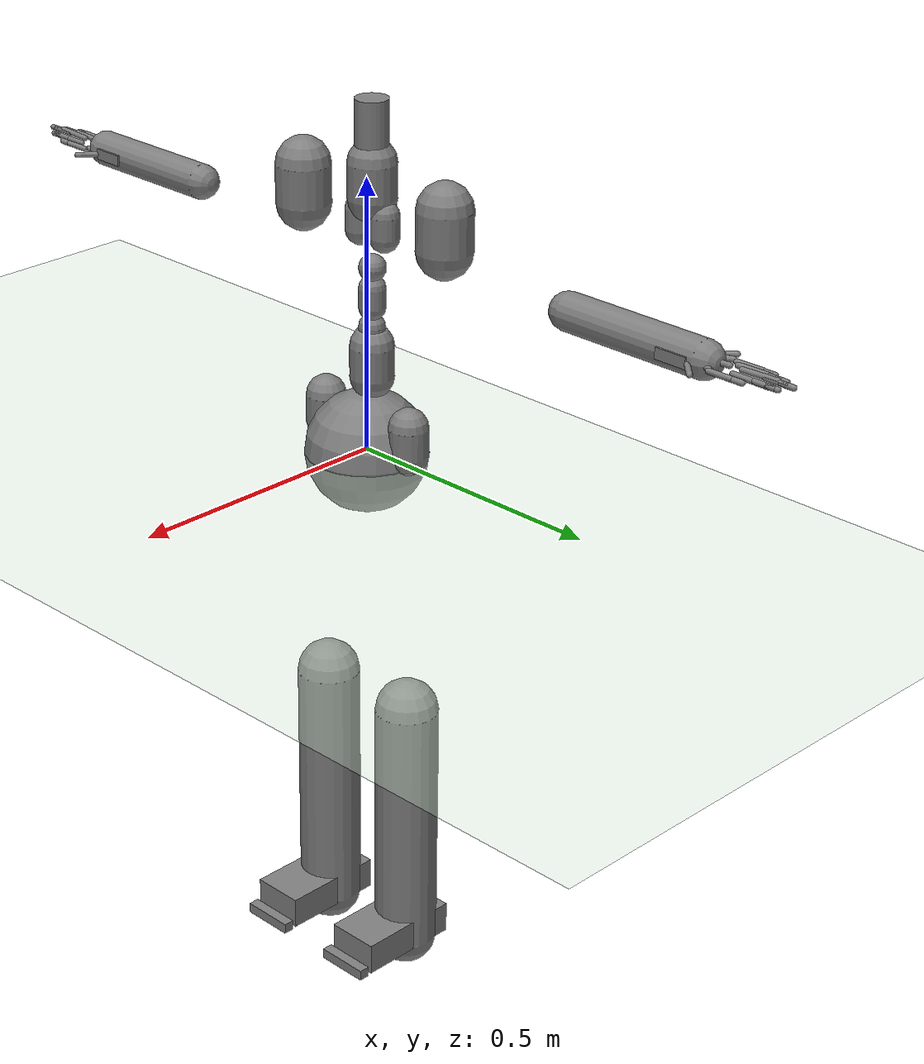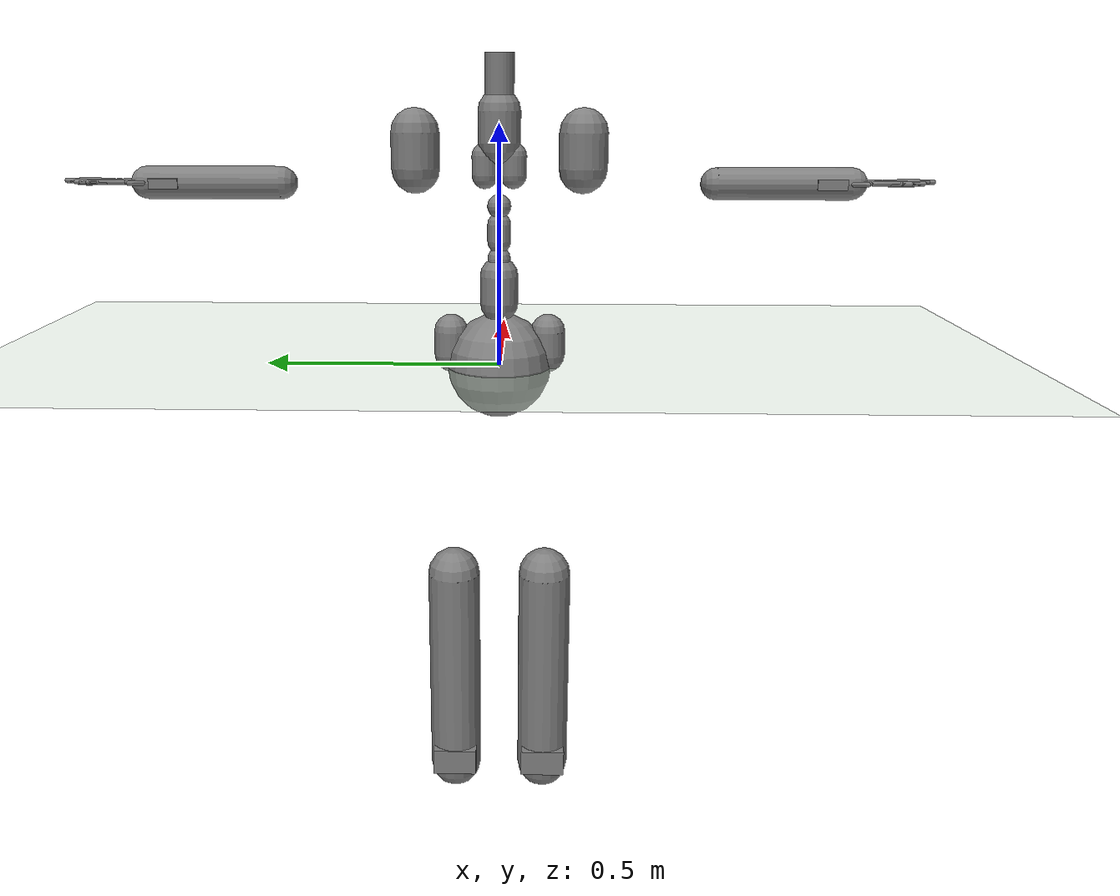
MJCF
<?xml version="1.0" ?>
<mujoco model="humanoid">
  <compiler coordinate="local"/>
  <statistic extent="2" center="0 0 1"/>
  <option timestep="0.00555"/>
  <default>
    <motor ctrlrange="-1 1" ctrllimited="true"/>
    <geom type="capsule" condim="1" friction="1.0 0.05 0.05" solimp=".9 .99 .003" solref=".015 1"/>
    <joint type="hinge" damping="0.1" stiffness="5" armature=".007" limited="true" solimplimit="0 .99 .01"/>
    <site size=".04" group="3"/>
  </default>
  <asset>
    <texture type="skybox" builtin="gradient" rgb1=".4 .5 .6" rgb2="0 0 0" width="100" height="100"/>
    <texture builtin="flat" height="1278" mark="cross" markrgb="1 1 1" name="texgeom" random="0.01" rgb1="0.8 0.6 0.4" rgb2="0.8 0.6 0.4" type="cube" width="127"/>
    <texture builtin="checker" height="100" name="texplane" rgb1="0 0 0" rgb2="0.8 0.8 0.8" type="2d" width="100"/>
    <material name="MatPlane" reflectance="0.5" shininess="1" specular="1" texrepeat="60 60" texture="texplane"/>
    <material name="geom" texture="texgeom" texuniform="true"/>
  </asset>
  <worldbody>
    <light cutoff="100" diffuse="1 1 1" dir="-0 0 -1.3" directional="true" exponent="1" pos="0 0 1.3" specular=".1 .1 .1"/>
    <geom conaffinity="1" condim="3" name="floor" pos="0 0 0" rgba="0.8 0.9 0.8 1" size="100 100 .2" type="plane" material="MatPlane"/>
    <body name="pHipOrigin" pos="0 0 0">
      <freejoint name="pHipOrigin"/>
      <geom type="sphere" contype="1" conaffinity="1" density="4629.6296296296305" size="0.11156" pos="0.0000 0.0000 -0.0000"/>
      <body name="jL5S1" pos="-0.01257168 0 0.11314484">
        <geom type="capsule" contype="1" conaffinity="1" density="1000" fromto="0 0 0.02277 0 0 0.07969" size="0.03984"/>
        <joint name="jL5S1_x" type="hinge" pos="0 0 0" axis="1 0 0" stiffness="500" damping="500" armature="0.02" range="-180.0000 180.0000"/>
        <joint name="jL5S1_y" type="hinge" pos="0 0 0" axis="0 1 0" stiffness="500" damping="500" armature="0.02" range="-180.0000 180.0000"/>
        <joint name="jL5S1_z" type="hinge" pos="0 0 0" axis="0 0 1" stiffness="500" damping="500" armature="0.02" range="-180.0000 180.0000"/>
        <body name="jL4L3" pos="0 0 0.06821442">
          <geom type="capsule" contype="1" conaffinity="1" density="1000" fromto="0 0 0.01364 0 0 0.04775" size="0.02388"/>
          <joint name="jL4L3_x" type="hinge" pos="0 0 0" axis="1 0 0" stiffness="500" damping="500" armature="0.02" range="-180.0000 180.0000"/>
          <joint name="jL4L3_y" type="hinge" pos="0 0 0" axis="0 1 0" stiffness="500" damping="500" armature="0.02" range="-180.0000 180.0000"/>
          <joint name="jL4L3_z" type="hinge" pos="0 0 0" axis="0 0 1" stiffness="500" damping="500" armature="0.02" range="-180.0000 180.0000"/>
          <body name="jL1T12" pos="-0.00053448 0 0.06927844">
            <geom type="capsule" contype="1" conaffinity="1" density="1000" fromto="0 0 0.01386 0 0 0.04850" size="0.02425"/>
            <joint name="jL1T12_x" type="hinge" pos="0 0 0" axis="1 0 0" stiffness="500" damping="500" armature="0.02" range="-180.0000 180.0000"/>
            <joint name="jL1T12_y" type="hinge" pos="0 0 0" axis="0 1 0" stiffness="500" damping="500" armature="0.02" range="-180.0000 180.0000"/>
            <joint name="jL1T12_z" type="hinge" pos="0 0 0" axis="0 0 1" stiffness="500" damping="500" armature="0.02" range="-180.0000 180.0000"/>
            <body name="jT9T8" pos="-0.00047223 0 0.06109008">
              <geom type="sphere" contype="1" conaffinity="1" density="1000" size="0.02444" pos="0.000 0.0000 0.024437"/>
              <joint name="jT9T8_x" type="hinge" pos="0 0 0" axis="1 0 0" stiffness="500" damping="500" armature="0.02" range="-180.0000 180.0000"/>
              <joint name="jT9T8_y" type="hinge" pos="0 0 0" axis="0 1 0" stiffness="500" damping="500" armature="0.02" range="-180.0000 180.0000"/>
              <joint name="jT9T8_z" type="hinge" pos="0 0 0" axis="0 0 1" stiffness="500" damping="500" armature="0.02" range="-180.0000 180.0000"/>
              <body name="jT1C7" pos="0 0 0.12459299">
                <geom type="capsule" contype="1" conaffinity="1" density="1000" fromto="0 0 0.02492 0 0 0.08722" size="0.04361"/>
                <joint name="jT1C7_x" type="hinge" pos="0 0 0" axis="1 0 0" stiffness="500" damping="500" armature="0.02" range="-180.0000 180.0000"/>
                <joint name="jT1C7_y" type="hinge" pos="0 0 0" axis="0 1 0" stiffness="500" damping="500" armature="0.02" range="-180.0000 180.0000"/>
                <joint name="jT1C7_z" type="hinge" pos="0 0 0" axis="0 0 1" stiffness="500" damping="500" armature="0.02" range="-180.0000 180.0000"/>
                <body name="jC1Head" pos="0.00117321 0 0.09944428">
                  <geom type="cylinder" contype="1" conaffinity="1" density="1000" fromto="0 0 0 0 0 0.09945" size="0.02984"/>
                  <joint name="jC1Head_x" type="hinge" pos="0 0 0" axis="1 0 0" stiffness="500" damping="500" armature="0.02" range="-180.0000 180.0000"/>
                  <joint name="jC1Head_y" type="hinge" pos="0 0 0" axis="0 1 0" stiffness="500" damping="500" armature="0.02" range="-180.0000 180.0000"/>
                  <joint name="jC1Head_z" type="hinge" pos="0 0 0" axis="0 0 1" stiffness="500" damping="500" armature="0.02" range="-180.0000 180.0000"/>
                </body>
              </body>
              <body name="jRightT4Shoulder" pos="0 -0.02912468 0.07101237">
                <geom type="capsule" contype="1" conaffinity="1" density="1000" fromto="0 0 0.01535 0 0 0.05373" size="0.02686"/>
                <joint name="jRightT4Shoulder_x" type="hinge" pos="0 0 0" axis="1 0 0" stiffness="500" damping="500" armature="0.02" range="-180.0000 180.0000"/>
                <joint name="jRightT4Shoulder_y" type="hinge" pos="0 0 0" axis="0 1 0" stiffness="500" damping="500" armature="0.02" range="-180.0000 180.0000"/>
                <joint name="jRightT4Shoulder_z" type="hinge" pos="0 0 0" axis="0 0 1" stiffness="500" damping="500" armature="0.02" range="-180.0000 180.0000"/>
                <body name="jRightShoulder" pos="0 -0.14155811 0">
                  <geom type="capsule" contype="1" conaffinity="1" density="1000" fromto="0 0 0.02831 0 0 0.09909" size="0.04955"/>
                  <joint name="jRightShoulder_x" type="hinge" pos="0 0 0" axis="1 0 0" stiffness="500" damping="500" armature="0.02" range="-180.0000 180.0000"/>
                  <joint name="jRightShoulder_y" type="hinge" pos="0 0 0" axis="0 1 0" stiffness="500" damping="500" armature="0.02" range="-180.0000 180.0000"/>
                  <joint name="jRightShoulder_z" type="hinge" pos="0 0 0" axis="0 0 1" stiffness="500" damping="500" armature="0.02" range="-180.0000 180.0000"/>
                  <body name="jRightElbow" pos="0 -0.27069873 0">
                    <geom type="capsule" contype="1" conaffinity="1" density="1000" fromto="0 0 0 0.00000000 -0.27069873 0.00000000" size="0.03248"/>
                    <joint name="jRightElbow_x" type="hinge" pos="0 0 0" axis="1 0 0" stiffness="500" damping="500" armature="0.02" range="-180.0000 180.0000"/>
                    <joint name="jRightElbow_y" type="hinge" pos="0 0 0" axis="0 1 0" stiffness="500" damping="500" armature="0.02" range="-180.0000 180.0000"/>
                    <joint name="jRightElbow_z" type="hinge" pos="0 0 0" axis="0 0 1" stiffness="500" damping="500" armature="0.02" range="-180.0000 180.0000"/>
                    <body name="jRightWrist" pos="0.00009136 -0.22698078 0">
                      <geom density="1000" type="box" pos="0 0 0" size="0.035 0.03 0.01" quat="1.0000 0.0000 0.0000 0.0000"/>
                      <joint name="jRightWrist_x" type="hinge" pos="0 0 0" axis="1 0 0" stiffness="500" damping="500" armature="0.02" range="-180.0000 180.0000"/>
                      <joint name="jRightWrist_y" type="hinge" pos="0 0 0" axis="0 1 0" stiffness="500" damping="500" armature="0.02" range="-180.0000 180.0000"/>
                      <joint name="jRightWrist_z" type="hinge" pos="0 0 0" axis="0 0 1" stiffness="500" damping="500" armature="0.02" range="-180.0000 180.0000"/>
                      <body name="jRightFirstCMC" pos="0.03014443 -0.02889513 -0.00136512">
                        <geom type="capsule" contype="1" conaffinity="1" density="1000" fromto="0 0 0 0.03014443 -0.02889513 -0.00136512" size="0.005"/>
                        <joint name="jRightFirstCMC_x" type="hinge" pos="0 0 0" axis="1 0 0" stiffness="500" damping="500" armature="0.02" range="-180.0000 180.0000"/>
                        <joint name="jRightFirstCMC_y" type="hinge" pos="0 0 0" axis="0 1 0" stiffness="500" damping="500" armature="0.02" range="-180.0000 180.0000"/>
                        <joint name="jRightFirstCMC_z" type="hinge" pos="0 0 0" axis="0 0 1" stiffness="500" damping="500" armature="0.02" range="-180.0000 180.0000"/>
                        <body name="jRightFirstMCP" pos="0.00152132 -0.04293060 0.00090712">
                          <geom type="capsule" contype="1" conaffinity="1" density="1000" fromto="0 0 0 0.00152132 -0.04293060 0.00090712" size="0.005"/>
                          <joint name="jRightFirstMCP_x" type="hinge" pos="0 0 0" axis="1 0 0" stiffness="500" damping="500" armature="0.02" range="-180.0000 180.0000"/>
                          <joint name="jRightFirstMCP_y" type="hinge" pos="0 0 0" axis="0 1 0" stiffness="500" damping="500" armature="0.02" range="-180.0000 180.0000"/>
                          <joint name="jRightFirstMCP_z" type="hinge" pos="0 0 0" axis="0 0 1" stiffness="500" damping="500" armature="0.02" range="-180.0000 180.0000"/>
                          <body name="jRightIP" pos="0 -0.03241190 0">
                            <geom type="capsule" contype="1" conaffinity="1" density="1000" fromto="0 0 0 0.00000000 -0.03241190 0.00000000" size="0.005"/>
                            <joint name="jRightIP_x" type="hinge" pos="0 0 0" axis="1 0 0" stiffness="500" damping="500" armature="0.02" range="-180.0000 180.0000"/>
                            <joint name="jRightIP_y" type="hinge" pos="0 0 0" axis="0 1 0" stiffness="500" damping="500" armature="0.02" range="-180.0000 180.0000"/>
                            <joint name="jRightIP_z" type="hinge" pos="0 0 0" axis="0 0 1" stiffness="500" damping="500" armature="0.02" range="-180.0000 180.0000"/>
                          </body>
                        </body>
                      </body>
                      <body name="jRightSecondCMC" pos="0.01192071 -0.03482854 -0.00060749">
                        <geom type="capsule" contype="1" conaffinity="1" density="1000" fromto="0 0 0 0.01192071 -0.03482854 -0.00060749" size="0.005"/>
                        <joint name="jRightSecondCMC_x" type="hinge" pos="0 0 0" axis="1 0 0" stiffness="500" damping="500" armature="0.02" range="-180.0000 180.0000"/>
                        <joint name="jRightSecondCMC_y" type="hinge" pos="0 0 0" axis="0 1 0" stiffness="500" damping="500" armature="0.02" range="-180.0000 180.0000"/>
                        <joint name="jRightSecondCMC_z" type="hinge" pos="0 0 0" axis="0 0 1" stiffness="500" damping="500" armature="0.02" range="-180.0000 180.0000"/>
                        <body name="jRightSecondMCP" pos="-0.00043451 -0.06930097 -0.00071888">
                          <geom type="capsule" contype="1" conaffinity="1" density="1000" fromto="0 0 0 -0.00043451 -0.06930097 -0.00071888" size="0.005"/>
                          <joint name="jRightSecondMCP_x" type="hinge" pos="0 0 0" axis="1 0 0" stiffness="500" damping="500" armature="0.02" range="-180.0000 180.0000"/>
                          <joint name="jRightSecondMCP_y" type="hinge" pos="0 0 0" axis="0 1 0" stiffness="500" damping="500" armature="0.02" range="-180.0000 180.0000"/>
                          <joint name="jRightSecondMCP_z" type="hinge" pos="0 0 0" axis="0 0 1" stiffness="500" damping="500" armature="0.02" range="-180.0000 180.0000"/>
                          <body name="jRightSecondPIP" pos="0 -0.04063323 0">
                            <geom type="capsule" contype="1" conaffinity="1" density="1000" fromto="0 0 0 0.00000000 -0.04063323 0.00000000" size="0.005"/>
                            <joint name="jRightSecondPIP_x" type="hinge" pos="0 0 0" axis="1 0 0" stiffness="500" damping="500" armature="0.02" range="-180.0000 180.0000"/>
                            <joint name="jRightSecondPIP_y" type="hinge" pos="0 0 0" axis="0 1 0" stiffness="500" damping="500" armature="0.02" range="-180.0000 180.0000"/>
                            <joint name="jRightSecondPIP_z" type="hinge" pos="0 0 0" axis="0 0 1" stiffness="500" damping="500" armature="0.02" range="-180.0000 180.0000"/>
                            <body name="jRightSecondDIP" pos="0 -0.02218557 0">
                              <geom type="capsule" contype="1" conaffinity="1" density="1000" fromto="0 0 0 0.00000000 -0.02218557 0.00000000" size="0.005"/>
                              <joint name="jRightSecondDIP_x" type="hinge" pos="0 0 0" axis="1 0 0" stiffness="500" damping="500" armature="0.02" range="-180.0000 180.0000"/>
                              <joint name="jRightSecondDIP_y" type="hinge" pos="0 0 0" axis="0 1 0" stiffness="500" damping="500" armature="0.02" range="-180.0000 180.0000"/>
                              <joint name="jRightSecondDIP_z" type="hinge" pos="0 0 0" axis="0 0 1" stiffness="500" damping="500" armature="0.02" range="-180.0000 180.0000"/>
                            </body>
                          </body>
                        </body>
                      </body>
                      <body name="jRightThirdCMC" pos="-0.00080843 -0.04371788 0.00183797">
                        <geom type="capsule" contype="1" conaffinity="1" density="1000" fromto="0 0 0 -0.00080843 -0.04371788 0.00183797" size="0.005"/>
                        <joint name="jRightThirdCMC_x" type="hinge" pos="0 0 0" axis="1 0 0" stiffness="500" damping="500" armature="0.02" range="-180.0000 180.0000"/>
                        <joint name="jRightThirdCMC_y" type="hinge" pos="0 0 0" axis="0 1 0" stiffness="500" damping="500" armature="0.02" range="-180.0000 180.0000"/>
                        <joint name="jRightThirdCMC_z" type="hinge" pos="0 0 0" axis="0 0 1" stiffness="500" damping="500" armature="0.02" range="-180.0000 180.0000"/>
                        <body name="jRightThirdMCP" pos="-0.00080994 -0.06710361 0.00182563">
                          <geom type="capsule" contype="1" conaffinity="1" density="1000" fromto="0 0 0 -0.00080994 -0.06710361 0.00182563" size="0.005"/>
                          <joint name="jRightThirdMCP_x" type="hinge" pos="0 0 0" axis="1 0 0" stiffness="500" damping="500" armature="0.02" range="-180.0000 180.0000"/>
                          <joint name="jRightThirdMCP_y" type="hinge" pos="0 0 0" axis="0 1 0" stiffness="500" damping="500" armature="0.02" range="-180.0000 180.0000"/>
                          <joint name="jRightThirdMCP_z" type="hinge" pos="0 0 0" axis="0 0 1" stiffness="500" damping="500" armature="0.02" range="-180.0000 180.0000"/>
                          <body name="jRightThirdPIP" pos="0 -0.04444300 0">
                            <geom type="capsule" contype="1" conaffinity="1" density="1000" fromto="0 0 0 0.00000000 -0.04444300 0.00000000" size="0.005"/>
                            <joint name="jRightThirdPIP_x" type="hinge" pos="0 0 0" axis="1 0 0" stiffness="500" damping="500" armature="0.02" range="-180.0000 180.0000"/>
                            <joint name="jRightThirdPIP_y" type="hinge" pos="0 0 0" axis="0 1 0" stiffness="500" damping="500" armature="0.02" range="-180.0000 180.0000"/>
                            <joint name="jRightThirdPIP_z" type="hinge" pos="0 0 0" axis="0 0 1" stiffness="500" damping="500" armature="0.02" range="-180.0000 180.0000"/>
                            <body name="jRightThirdDIP" pos="0 -0.02629957 0">
                              <geom type="capsule" contype="1" conaffinity="1" density="1000" fromto="0 0 0 0.00000000 -0.02629957 0.00000000" size="0.005"/>
                              <joint name="jRightThirdDIP_x" type="hinge" pos="0 0 0" axis="1 0 0" stiffness="500" damping="500" armature="0.02" range="-180.0000 180.0000"/>
                              <joint name="jRightThirdDIP_y" type="hinge" pos="0 0 0" axis="0 1 0" stiffness="500" damping="500" armature="0.02" range="-180.0000 180.0000"/>
                              <joint name="jRightThirdDIP_z" type="hinge" pos="0 0 0" axis="0 0 1" stiffness="500" damping="500" armature="0.02" range="-180.0000 180.0000"/>
                            </body>
                          </body>
                        </body>
                      </body>
                      <body name="jRightFourthCMC" pos="-0.01344786 -0.03745452 0.00088162">
                        <geom type="capsule" contype="1" conaffinity="1" density="1000" fromto="0 0 0 -0.01344786 -0.03745452 0.00088162" size="0.005"/>
                        <joint name="jRightFourthCMC_x" type="hinge" pos="0 0 0" axis="1 0 0" stiffness="500" damping="500" armature="0.02" range="-180.0000 180.0000"/>
                        <joint name="jRightFourthCMC_y" type="hinge" pos="0 0 0" axis="0 1 0" stiffness="500" damping="500" armature="0.02" range="-180.0000 180.0000"/>
                        <joint name="jRightFourthCMC_z" type="hinge" pos="0 0 0" axis="0 0 1" stiffness="500" damping="500" armature="0.02" range="-180.0000 180.0000"/>
                        <body name="jRightFourthMCP" pos="-0.00040774 -0.05588468 0.00087799">
                          <geom type="capsule" contype="1" conaffinity="1" density="1000" fromto="0 0 0 -0.00040774 -0.05588468 0.00087799" size="0.005"/>
                          <joint name="jRightFourthMCP_x" type="hinge" pos="0 0 0" axis="1 0 0" stiffness="500" damping="500" armature="0.02" range="-180.0000 180.0000"/>
                          <joint name="jRightFourthMCP_y" type="hinge" pos="0 0 0" axis="0 1 0" stiffness="500" damping="500" armature="0.02" range="-180.0000 180.0000"/>
                          <joint name="jRightFourthMCP_z" type="hinge" pos="0 0 0" axis="0 0 1" stiffness="500" damping="500" armature="0.02" range="-180.0000 180.0000"/>
                          <body name="jRightFourthPIP" pos="0 -0.04224817 0">
                            <geom type="capsule" contype="1" conaffinity="1" density="1000" fromto="0 0 0 0.00000000 -0.04224817 0.00000000" size="0.005"/>
                            <joint name="jRightFourthPIP_x" type="hinge" pos="0 0 0" axis="1 0 0" stiffness="500" damping="500" armature="0.02" range="-180.0000 180.0000"/>
                            <joint name="jRightFourthPIP_y" type="hinge" pos="0 0 0" axis="0 1 0" stiffness="500" damping="500" armature="0.02" range="-180.0000 180.0000"/>
                            <joint name="jRightFourthPIP_z" type="hinge" pos="0 0 0" axis="0 0 1" stiffness="500" damping="500" armature="0.02" range="-180.0000 180.0000"/>
                            <body name="jRightFourthDIP" pos="0 -0.02504094 0">
                              <geom type="capsule" contype="1" conaffinity="1" density="1000" fromto="0 0 0 0.00000000 -0.02504094 0.00000000" size="0.005"/>
                              <joint name="jRightFourthDIP_x" type="hinge" pos="0 0 0" axis="1 0 0" stiffness="500" damping="500" armature="0.02" range="-180.0000 180.0000"/>
                              <joint name="jRightFourthDIP_y" type="hinge" pos="0 0 0" axis="0 1 0" stiffness="500" damping="500" armature="0.02" range="-180.0000 180.0000"/>
                              <joint name="jRightFourthDIP_z" type="hinge" pos="0 0 0" axis="0 0 1" stiffness="500" damping="500" armature="0.02" range="-180.0000 180.0000"/>
                            </body>
                          </body>
                        </body>
                      </body>
                      <body name="jRightFifthCMC" pos="-0.02353160 -0.03278860 0.00064681">
                        <geom type="capsule" contype="1" conaffinity="1" density="1000" fromto="0 0 0 -0.02353160 -0.03278860 0.00064681" size="0.005"/>
                        <joint name="jRightFifthCMC_x" type="hinge" pos="0 0 0" axis="1 0 0" stiffness="500" damping="500" armature="0.02" range="-180.0000 180.0000"/>
                        <joint name="jRightFifthCMC_y" type="hinge" pos="0 0 0" axis="0 1 0" stiffness="500" damping="500" armature="0.02" range="-180.0000 180.0000"/>
                        <joint name="jRightFifthCMC_z" type="hinge" pos="0 0 0" axis="0 0 1" stiffness="500" damping="500" armature="0.02" range="-180.0000 180.0000"/>
                        <body name="jRightFifthMCP" pos="-0.00000743 -0.05032711 0.00069256">
                          <geom type="capsule" contype="1" conaffinity="1" density="1000" fromto="0 0 0 -0.00000743 -0.05032711 0.00069256" size="0.005"/>
                          <joint name="jRightFifthMCP_x" type="hinge" pos="0 0 0" axis="1 0 0" stiffness="500" damping="500" armature="0.02" range="-180.0000 180.0000"/>
                          <joint name="jRightFifthMCP_y" type="hinge" pos="0 0 0" axis="0 1 0" stiffness="500" damping="500" armature="0.02" range="-180.0000 180.0000"/>
                          <joint name="jRightFifthMCP_z" type="hinge" pos="0 0 0" axis="0 0 1" stiffness="500" damping="500" armature="0.02" range="-180.0000 180.0000"/>
                          <body name="jRightFifthPIP" pos="0 -0.03525768 0">
                            <geom type="capsule" contype="1" conaffinity="1" density="1000" fromto="0 0 0 0.00000000 -0.03525768 0.00000000" size="0.005"/>
                            <joint name="jRightFifthPIP_x" type="hinge" pos="0 0 0" axis="1 0 0" stiffness="500" damping="500" armature="0.02" range="-180.0000 180.0000"/>
                            <joint name="jRightFifthPIP_y" type="hinge" pos="0 0 0" axis="0 1 0" stiffness="500" damping="500" armature="0.02" range="-180.0000 180.0000"/>
                            <joint name="jRightFifthPIP_z" type="hinge" pos="0 0 0" axis="0 0 1" stiffness="500" damping="500" armature="0.02" range="-180.0000 180.0000"/>
                            <body name="jRightFifthDIP" pos="0 -0.01919252 0">
                              <geom type="capsule" contype="1" conaffinity="1" density="1000" fromto="0 0 0 0.00000000 -0.01919252 0.00000000" size="0.005"/>
                              <joint name="jRightFifthDIP_x" type="hinge" pos="0 0 0" axis="1 0 0" stiffness="500" damping="500" armature="0.02" range="-180.0000 180.0000"/>
                              <joint name="jRightFifthDIP_y" type="hinge" pos="0 0 0" axis="0 1 0" stiffness="500" damping="500" armature="0.02" range="-180.0000 180.0000"/>
                              <joint name="jRightFifthDIP_z" type="hinge" pos="0 0 0" axis="0 0 1" stiffness="500" damping="500" armature="0.02" range="-180.0000 180.0000"/>
                            </body>
                          </body>
                        </body>
                      </body>
                    </body>
                  </body>
                </body>
              </body>
              <body name="jLeftT4Shoulder" pos="0 0.02910647 0.07096795">
                <geom type="capsule" contype="1" conaffinity="1" density="1000" fromto="0 0 0.01534 0 0 0.05369" size="0.02685"/>
                <joint name="jLeftT4Shoulder_x" type="hinge" pos="0 0 0" axis="1 0 0" stiffness="500" damping="500" armature="0.02" range="-180.0000 180.0000"/>
                <joint name="jLeftT4Shoulder_y" type="hinge" pos="0 0 0" axis="0 1 0" stiffness="500" damping="500" armature="0.02" range="-180.0000 180.0000"/>
                <joint name="jLeftT4Shoulder_z" type="hinge" pos="0 0 0" axis="0 0 1" stiffness="500" damping="500" armature="0.02" range="-180.0000 180.0000"/>
                <body name="jLeftShoulder" pos="0 0.14175041 0">
                  <geom type="capsule" contype="1" conaffinity="1" density="1000" fromto="0 0 0.02835 0 0 0.09923" size="0.04961"/>
                  <joint name="jLeftShoulder_x" type="hinge" pos="0 0 0" axis="1 0 0" stiffness="500" damping="500" armature="0.02" range="-180.0000 180.0000"/>
                  <joint name="jLeftShoulder_y" type="hinge" pos="0 0 0" axis="0 1 0" stiffness="500" damping="500" armature="0.02" range="-180.0000 180.0000"/>
                  <joint name="jLeftShoulder_z" type="hinge" pos="0 0 0" axis="0 0 1" stiffness="500" damping="500" armature="0.02" range="-180.0000 180.0000"/>
                  <body name="jLeftElbow" pos="0 0.27641033 0">
                    <geom type="capsule" contype="1" conaffinity="1" density="1000" fromto="0 0 0 0.00000000 0.27641033 0.00000000" size="0.03317"/>
                    <joint name="jLeftElbow_x" type="hinge" pos="0 0 0" axis="1 0 0" stiffness="500" damping="500" armature="0.02" range="-180.0000 180.0000"/>
                    <joint name="jLeftElbow_y" type="hinge" pos="0 0 0" axis="0 1 0" stiffness="500" damping="500" armature="0.02" range="-180.0000 180.0000"/>
                    <joint name="jLeftElbow_z" type="hinge" pos="0 0 0" axis="0 0 1" stiffness="500" damping="500" armature="0.02" range="-180.0000 180.0000"/>
                    <body name="jLeftWrist" pos="0.00009505 0.23616397 0">
                      <geom density="1000" type="box" pos="0 0 0" size="0.035 0.03 0.01" quat="1.0000 0.0000 0.0000 0.0000"/>
                      <joint name="jLeftWrist_x" type="hinge" pos="0 0 0" axis="1 0 0" stiffness="500" damping="500" armature="0.02" range="-180.0000 180.0000"/>
                      <joint name="jLeftWrist_y" type="hinge" pos="0 0 0" axis="0 1 0" stiffness="500" damping="500" armature="0.02" range="-180.0000 180.0000"/>
                      <joint name="jLeftWrist_z" type="hinge" pos="0 0 0" axis="0 0 1" stiffness="500" damping="500" armature="0.02" range="-180.0000 180.0000"/>
                      <body name="jLeftFirstCMC" pos="0.02950430 0.02957398 -0.00132052">
                        <geom type="capsule" contype="1" conaffinity="1" density="1000" fromto="0 0 0 0.02950430 0.02957398 -0.00132052" size="0.005"/>
                        <joint name="jLeftFirstCMC_x" type="hinge" pos="0 0 0" axis="1 0 0" stiffness="500" damping="500" armature="0.02" range="-180.0000 180.0000"/>
                        <joint name="jLeftFirstCMC_y" type="hinge" pos="0 0 0" axis="0 1 0" stiffness="500" damping="500" armature="0.02" range="-180.0000 180.0000"/>
                        <joint name="jLeftFirstCMC_z" type="hinge" pos="0 0 0" axis="0 0 1" stiffness="500" damping="500" armature="0.02" range="-180.0000 180.0000"/>
                        <body name="jLeftFirstMCP" pos="0.00150666 0.04292964 0.00088402">
                          <geom type="capsule" contype="1" conaffinity="1" density="1000" fromto="0 0 0 0.00150666 0.04292964 0.00088402" size="0.005"/>
                          <joint name="jLeftFirstMCP_x" type="hinge" pos="0 0 0" axis="1 0 0" stiffness="500" damping="500" armature="0.02" range="-180.0000 180.0000"/>
                          <joint name="jLeftFirstMCP_y" type="hinge" pos="0 0 0" axis="0 1 0" stiffness="500" damping="500" armature="0.02" range="-180.0000 180.0000"/>
                          <joint name="jLeftFirstMCP_z" type="hinge" pos="0 0 0" axis="0 0 1" stiffness="500" damping="500" armature="0.02" range="-180.0000 180.0000"/>
                          <body name="jLeftIP" pos="0 0.03241190 0">
                            <geom type="capsule" contype="1" conaffinity="1" density="1000" fromto="0 0 0 0.00000000 0.03241190 0.00000000" size="0.005"/>
                            <joint name="jLeftIP_x" type="hinge" pos="0 0 0" axis="1 0 0" stiffness="500" damping="500" armature="0.02" range="-180.0000 180.0000"/>
                            <joint name="jLeftIP_y" type="hinge" pos="0 0 0" axis="0 1 0" stiffness="500" damping="500" armature="0.02" range="-180.0000 180.0000"/>
                            <joint name="jLeftIP_z" type="hinge" pos="0 0 0" axis="0 0 1" stiffness="500" damping="500" armature="0.02" range="-180.0000 180.0000"/>
                          </body>
                        </body>
                      </body>
                      <body name="jLeftSecondCMC" pos="0.01205801 0.03476445 -0.00061251">
                        <geom type="capsule" contype="1" conaffinity="1" density="1000" fromto="0 0 0 0.01205801 0.03476445 -0.00061251" size="0.005"/>
                        <joint name="jLeftSecondCMC_x" type="hinge" pos="0 0 0" axis="1 0 0" stiffness="500" damping="500" armature="0.02" range="-180.0000 180.0000"/>
                        <joint name="jLeftSecondCMC_y" type="hinge" pos="0 0 0" axis="0 1 0" stiffness="500" damping="500" armature="0.02" range="-180.0000 180.0000"/>
                        <joint name="jLeftSecondCMC_z" type="hinge" pos="0 0 0" axis="0 0 1" stiffness="500" damping="500" armature="0.02" range="-180.0000 180.0000"/>
                        <body name="jLeftSecondMCP" pos="-0.00037886 0.06930239 -0.00072776">
                          <geom type="capsule" contype="1" conaffinity="1" density="1000" fromto="0 0 0 -0.00037886 0.06930239 -0.00072776" size="0.005"/>
                          <joint name="jLeftSecondMCP_x" type="hinge" pos="0 0 0" axis="1 0 0" stiffness="500" damping="500" armature="0.02" range="-180.0000 180.0000"/>
                          <joint name="jLeftSecondMCP_y" type="hinge" pos="0 0 0" axis="0 1 0" stiffness="500" damping="500" armature="0.02" range="-180.0000 180.0000"/>
                          <joint name="jLeftSecondMCP_z" type="hinge" pos="0 0 0" axis="0 0 1" stiffness="500" damping="500" armature="0.02" range="-180.0000 180.0000"/>
                          <body name="jLeftSecondPIP" pos="0 0.04063323 0">
                            <geom type="capsule" contype="1" conaffinity="1" density="1000" fromto="0 0 0 0.00000000 0.04063323 0.00000000" size="0.005"/>
                            <joint name="jLeftSecondPIP_x" type="hinge" pos="0 0 0" axis="1 0 0" stiffness="500" damping="500" armature="0.02" range="-180.0000 180.0000"/>
                            <joint name="jLeftSecondPIP_y" type="hinge" pos="0 0 0" axis="0 1 0" stiffness="500" damping="500" armature="0.02" range="-180.0000 180.0000"/>
                            <joint name="jLeftSecondPIP_z" type="hinge" pos="0 0 0" axis="0 0 1" stiffness="500" damping="500" armature="0.02" range="-180.0000 180.0000"/>
                            <body name="jLeftSecondDIP" pos="0 0.02218557 0">
                              <geom type="capsule" contype="1" conaffinity="1" density="1000" fromto="0 0 0 0.00000000 0.02218557 0.00000000" size="0.005"/>
                              <joint name="jLeftSecondDIP_x" type="hinge" pos="0 0 0" axis="1 0 0" stiffness="500" damping="500" armature="0.02" range="-180.0000 180.0000"/>
                              <joint name="jLeftSecondDIP_y" type="hinge" pos="0 0 0" axis="0 1 0" stiffness="500" damping="500" armature="0.02" range="-180.0000 180.0000"/>
                              <joint name="jLeftSecondDIP_z" type="hinge" pos="0 0 0" axis="0 0 1" stiffness="500" damping="500" armature="0.02" range="-180.0000 180.0000"/>
                            </body>
                          </body>
                        </body>
                      </body>
                      <body name="jLeftThirdCMC" pos="-0.00081317 0.04372181 0.00177670">
                        <geom type="capsule" contype="1" conaffinity="1" density="1000" fromto="0 0 0 -0.00081317 0.04372181 0.00177670" size="0.005"/>
                        <joint name="jLeftThirdCMC_x" type="hinge" pos="0 0 0" axis="1 0 0" stiffness="500" damping="500" armature="0.02" range="-180.0000 180.0000"/>
                        <joint name="jLeftThirdCMC_y" type="hinge" pos="0 0 0" axis="0 1 0" stiffness="500" damping="500" armature="0.02" range="-180.0000 180.0000"/>
                        <joint name="jLeftThirdCMC_z" type="hinge" pos="0 0 0" axis="0 0 1" stiffness="500" damping="500" armature="0.02" range="-180.0000 180.0000"/>
                        <body name="jLeftThirdMCP" pos="-0.00081648 0.06710491 0.00178893">
                          <geom type="capsule" contype="1" conaffinity="1" density="1000" fromto="0 0 0 -0.00081648 0.06710491 0.00178893" size="0.005"/>
                          <joint name="jLeftThirdMCP_x" type="hinge" pos="0 0 0" axis="1 0 0" stiffness="500" damping="500" armature="0.02" range="-180.0000 180.0000"/>
                          <joint name="jLeftThirdMCP_y" type="hinge" pos="0 0 0" axis="0 1 0" stiffness="500" damping="500" armature="0.02" range="-180.0000 180.0000"/>
                          <joint name="jLeftThirdMCP_z" type="hinge" pos="0 0 0" axis="0 0 1" stiffness="500" damping="500" armature="0.02" range="-180.0000 180.0000"/>
                          <body name="jLeftThirdPIP" pos="0 0.04444300 0">
                            <geom type="capsule" contype="1" conaffinity="1" density="1000" fromto="0 0 0 0.00000000 0.04444300 0.00000000" size="0.005"/>
                            <joint name="jLeftThirdPIP_x" type="hinge" pos="0 0 0" axis="1 0 0" stiffness="500" damping="500" armature="0.02" range="-180.0000 180.0000"/>
                            <joint name="jLeftThirdPIP_y" type="hinge" pos="0 0 0" axis="0 1 0" stiffness="500" damping="500" armature="0.02" range="-180.0000 180.0000"/>
                            <joint name="jLeftThirdPIP_z" type="hinge" pos="0 0 0" axis="0 0 1" stiffness="500" damping="500" armature="0.02" range="-180.0000 180.0000"/>
                            <body name="jLeftThirdDIP" pos="0 0.02629957 0">
                              <geom type="capsule" contype="1" conaffinity="1" density="1000" fromto="0 0 0 0.00000000 0.02629957 0.00000000" size="0.005"/>
                              <joint name="jLeftThirdDIP_x" type="hinge" pos="0 0 0" axis="1 0 0" stiffness="500" damping="500" armature="0.02" range="-180.0000 180.0000"/>
                              <joint name="jLeftThirdDIP_y" type="hinge" pos="0 0 0" axis="0 1 0" stiffness="500" damping="500" armature="0.02" range="-180.0000 180.0000"/>
                              <joint name="jLeftThirdDIP_z" type="hinge" pos="0 0 0" axis="0 0 1" stiffness="500" damping="500" armature="0.02" range="-180.0000 180.0000"/>
                            </body>
                          </body>
                        </body>
                      </body>
                      <body name="jLeftFourthCMC" pos="-0.01394131 0.03726294 0.00094112">
                        <geom type="capsule" contype="1" conaffinity="1" density="1000" fromto="0 0 0 -0.01394131 0.03726294 0.00094112" size="0.005"/>
                        <joint name="jLeftFourthCMC_x" type="hinge" pos="0 0 0" axis="1 0 0" stiffness="500" damping="500" armature="0.02" range="-180.0000 180.0000"/>
                        <joint name="jLeftFourthCMC_y" type="hinge" pos="0 0 0" axis="0 1 0" stiffness="500" damping="500" armature="0.02" range="-180.0000 180.0000"/>
                        <joint name="jLeftFourthCMC_z" type="hinge" pos="0 0 0" axis="0 0 1" stiffness="500" damping="500" armature="0.02" range="-180.0000 180.0000"/>
                        <body name="jLeftFourthMCP" pos="-0.00043849 0.05588148 0.00092858">
                          <geom type="capsule" contype="1" conaffinity="1" density="1000" fromto="0 0 0 -0.00043849 0.05588148 0.00092858" size="0.005"/>
                          <joint name="jLeftFourthMCP_x" type="hinge" pos="0 0 0" axis="1 0 0" stiffness="500" damping="500" armature="0.02" range="-180.0000 180.0000"/>
                          <joint name="jLeftFourthMCP_y" type="hinge" pos="0 0 0" axis="0 1 0" stiffness="500" damping="500" armature="0.02" range="-180.0000 180.0000"/>
                          <joint name="jLeftFourthMCP_z" type="hinge" pos="0 0 0" axis="0 0 1" stiffness="500" damping="500" armature="0.02" range="-180.0000 180.0000"/>
                          <body name="jLeftFourthPIP" pos="0 0.04224817 0">
                            <geom type="capsule" contype="1" conaffinity="1" density="1000" fromto="0 0 0 0.00000000 0.04224817 0.00000000" size="0.005"/>
                            <joint name="jLeftFourthPIP_x" type="hinge" pos="0 0 0" axis="1 0 0" stiffness="500" damping="500" armature="0.02" range="-180.0000 180.0000"/>
                            <joint name="jLeftFourthPIP_y" type="hinge" pos="0 0 0" axis="0 1 0" stiffness="500" damping="500" armature="0.02" range="-180.0000 180.0000"/>
                            <joint name="jLeftFourthPIP_z" type="hinge" pos="0 0 0" axis="0 0 1" stiffness="500" damping="500" armature="0.02" range="-180.0000 180.0000"/>
                            <body name="jLeftFourthDIP" pos="0 0.02504094 0">
                              <geom type="capsule" contype="1" conaffinity="1" density="1000" fromto="0 0 0 0.00000000 0.02504094 0.00000000" size="0.005"/>
                              <joint name="jLeftFourthDIP_x" type="hinge" pos="0 0 0" axis="1 0 0" stiffness="500" damping="500" armature="0.02" range="-180.0000 180.0000"/>
                              <joint name="jLeftFourthDIP_y" type="hinge" pos="0 0 0" axis="0 1 0" stiffness="500" damping="500" armature="0.02" range="-180.0000 180.0000"/>
                              <joint name="jLeftFourthDIP_z" type="hinge" pos="0 0 0" axis="0 0 1" stiffness="500" damping="500" armature="0.02" range="-180.0000 180.0000"/>
                            </body>
                          </body>
                        </body>
                      </body>
                      <body name="jLeftFifthCMC" pos="-0.02424446 0.03227025 0.00065721">
                        <geom type="capsule" contype="1" conaffinity="1" density="1000" fromto="0 0 0 -0.02424446 0.03227025 0.00065721" size="0.005"/>
                        <joint name="jLeftFifthCMC_x" type="hinge" pos="0 0 0" axis="1 0 0" stiffness="500" damping="500" armature="0.02" range="-180.0000 180.0000"/>
                        <joint name="jLeftFifthCMC_y" type="hinge" pos="0 0 0" axis="0 1 0" stiffness="500" damping="500" armature="0.02" range="-180.0000 180.0000"/>
                        <joint name="jLeftFifthCMC_z" type="hinge" pos="0 0 0" axis="0 0 1" stiffness="500" damping="500" armature="0.02" range="-180.0000 180.0000"/>
                        <body name="jLeftFifthMCP" pos="-0.00001427 0.05032574 0.00072416">
                          <geom type="capsule" contype="1" conaffinity="1" density="1000" fromto="0 0 0 -0.00001427 0.05032574 0.00072416" size="0.005"/>
                          <joint name="jLeftFifthMCP_x" type="hinge" pos="0 0 0" axis="1 0 0" stiffness="500" damping="500" armature="0.02" range="-180.0000 180.0000"/>
                          <joint name="jLeftFifthMCP_y" type="hinge" pos="0 0 0" axis="0 1 0" stiffness="500" damping="500" armature="0.02" range="-180.0000 180.0000"/>
                          <joint name="jLeftFifthMCP_z" type="hinge" pos="0 0 0" axis="0 0 1" stiffness="500" damping="500" armature="0.02" range="-180.0000 180.0000"/>
                          <body name="jLeftFifthPIP" pos="0 0.03525768 0">
                            <geom type="capsule" contype="1" conaffinity="1" density="1000" fromto="0 0 0 0.00000000 0.03525768 0.00000000" size="0.005"/>
                            <joint name="jLeftFifthPIP_x" type="hinge" pos="0 0 0" axis="1 0 0" stiffness="500" damping="500" armature="0.02" range="-180.0000 180.0000"/>
                            <joint name="jLeftFifthPIP_y" type="hinge" pos="0 0 0" axis="0 1 0" stiffness="500" damping="500" armature="0.02" range="-180.0000 180.0000"/>
                            <joint name="jLeftFifthPIP_z" type="hinge" pos="0 0 0" axis="0 0 1" stiffness="500" damping="500" armature="0.02" range="-180.0000 180.0000"/>
                            <body name="jLeftFifthDIP" pos="0 0.01919252 0">
                              <geom type="capsule" contype="1" conaffinity="1" density="1000" fromto="0 0 0 0.00000000 0.01919252 0.00000000" size="0.005"/>
                              <joint name="jLeftFifthDIP_x" type="hinge" pos="0 0 0" axis="1 0 0" stiffness="500" damping="500" armature="0.02" range="-180.0000 180.0000"/>
                              <joint name="jLeftFifthDIP_y" type="hinge" pos="0 0 0" axis="0 1 0" stiffness="500" damping="500" armature="0.02" range="-180.0000 180.0000"/>
                              <joint name="jLeftFifthDIP_z" type="hinge" pos="0 0 0" axis="0 0 1" stiffness="500" damping="500" armature="0.02" range="-180.0000 180.0000"/>
                            </body>
                          </body>
                        </body>
                      </body>
                    </body>
                  </body>
                </body>
              </body>
            </body>
          </body>
        </body>
      </body>
      <body name="jRightHip" pos="-0.00017476 -0.10371296 0.00157329">
        <geom type="capsule" contype="1" conaffinity="1" density="1000" fromto="0 0 0.02075 0 0 0.07261" size="0.03630"/>
        <joint name="jRightHip_x" type="hinge" pos="0 0 0" axis="1 0 0" stiffness="500" damping="500" armature="0.02" range="-180.0000 180.0000"/>
        <joint name="jRightHip_y" type="hinge" pos="0 0 0" axis="0 1 0" stiffness="500" damping="500" armature="0.02" range="-180.0000 180.0000"/>
        <joint name="jRightHip_z" type="hinge" pos="0 0 0" axis="0 0 1" stiffness="500" damping="500" armature="0.02" range="-180.0000 180.0000"/>
        <body name="jRightKnee" pos="0.00005818 0 -0.48796603">
          <geom type="capsule" contype="1" conaffinity="1" density="1000" fromto="0 0 0 0.00005818 0.00000000 -0.48796603" size="0.05856"/>
          <joint name="jRightKnee_x" type="hinge" pos="0 0 0" axis="1 0 0" stiffness="500" damping="500" armature="0.02" range="-180.0000 180.0000"/>
          <joint name="jRightKnee_y" type="hinge" pos="0 0 0" axis="0 1 0" stiffness="500" damping="500" armature="0.02" range="-180.0000 180.0000"/>
          <joint name="jRightKnee_z" type="hinge" pos="0 0 0" axis="0 0 1" stiffness="500" damping="500" armature="0.02" range="-180.0000 180.0000"/>
          <body name="jRightAnkle" pos="0.00048662 0 -0.43096667">
            <geom density="1000" type="box" pos="0.04 0. -0.03" size="0.1 0.05 0.03" quat="1.0 0 0 0"/>
            <joint name="jRightAnkle_x" type="hinge" pos="0 0 0" axis="1 0 0" stiffness="500" damping="500" armature="0.02" range="-180.0000 180.0000"/>
            <joint name="jRightAnkle_y" type="hinge" pos="0 0 0" axis="0 1 0" stiffness="500" damping="500" armature="0.02" range="-180.0000 180.0000"/>
            <joint name="jRightAnkle_z" type="hinge" pos="0 0 0" axis="0 0 1" stiffness="500" damping="500" armature="0.02" range="-180.0000 180.0000"/>
            <body name="jRightBallFoot" pos="0.15724020 0 -0.07213568">
              <geom density="1000" type="box" pos="0 0 0.02" size="0.01 0.05 0.01" quat="1.0 0 0 0"/>
              <joint name="jRightBallFoot_x" type="hinge" pos="0 0 0" axis="1 0 0" stiffness="500" damping="500" armature="0.02" range="-180.0000 180.0000"/>
              <joint name="jRightBallFoot_y" type="hinge" pos="0 0 0" axis="0 1 0" stiffness="500" damping="500" armature="0.02" range="-180.0000 180.0000"/>
              <joint name="jRightBallFoot_z" type="hinge" pos="0 0 0" axis="0 0 1" stiffness="500" damping="500" armature="0.02" range="-180.0000 180.0000"/>
            </body>
          </body>
        </body>
      </body>
      <body name="jLeftHip" pos="-0.00017085 0.10271309 0.00153752">
        <geom type="capsule" contype="1" conaffinity="1" density="1000" fromto="0 0 0.02054 0 0 0.07191" size="0.03595"/>
        <joint name="jLeftHip_x" type="hinge" pos="0 0 0" axis="1 0 0" stiffness="500" damping="500" armature="0.02" range="-180.0000 180.0000"/>
        <joint name="jLeftHip_y" type="hinge" pos="0 0 0" axis="0 1 0" stiffness="500" damping="500" armature="0.02" range="-180.0000 180.0000"/>
        <joint name="jLeftHip_z" type="hinge" pos="0 0 0" axis="0 0 1" stiffness="500" damping="500" armature="0.02" range="-180.0000 180.0000"/>
        <body name="jLeftKnee" pos="0.00005831 0 -0.48904076">
          <geom type="capsule" contype="1" conaffinity="1" density="1000" fromto="0 0 0 0.00005831 0.00000000 -0.48904076" size="0.05868"/>
          <joint name="jLeftKnee_x" type="hinge" pos="0 0 0" axis="1 0 0" stiffness="500" damping="500" armature="0.02" range="-180.0000 180.0000"/>
          <joint name="jLeftKnee_y" type="hinge" pos="0 0 0" axis="0 1 0" stiffness="500" damping="500" armature="0.02" range="-180.0000 180.0000"/>
          <joint name="jLeftKnee_z" type="hinge" pos="0 0 0" axis="0 0 1" stiffness="500" damping="500" armature="0.02" range="-180.0000 180.0000"/>
          <body name="jLeftAnkle" pos="0.00048662 0 -0.43096664">
            <geom density="1000" type="box" pos="0.04 0. -0.03" size="0.1 0.05 0.03" quat="1.0 0 0 0"/>
            <joint name="jLeftAnkle_x" type="hinge" pos="0 0 0" axis="1 0 0" stiffness="500" damping="500" armature="0.02" range="-180.0000 180.0000"/>
            <joint name="jLeftAnkle_y" type="hinge" pos="0 0 0" axis="0 1 0" stiffness="500" damping="500" armature="0.02" range="-180.0000 180.0000"/>
            <joint name="jLeftAnkle_z" type="hinge" pos="0 0 0" axis="0 0 1" stiffness="500" damping="500" armature="0.02" range="-180.0000 180.0000"/>
            <body name="jLeftBallFoot" pos="0.15724020 0 -0.07213568">
              <geom density="1000" type="box" pos="0 0 0.02" size="0.01 0.05 0.01" quat="1.0 0 0 0"/>
              <joint name="jLeftBallFoot_x" type="hinge" pos="0 0 0" axis="1 0 0" stiffness="500" damping="500" armature="0.02" range="-180.0000 180.0000"/>
              <joint name="jLeftBallFoot_y" type="hinge" pos="0 0 0" axis="0 1 0" stiffness="500" damping="500" armature="0.02" range="-180.0000 180.0000"/>
              <joint name="jLeftBallFoot_z" type="hinge" pos="0 0 0" axis="0 0 1" stiffness="500" damping="500" armature="0.02" range="-180.0000 180.0000"/>
            </body>
          </body>
        </body>
      </body>
    </body>
  </worldbody>
  <actuator>
    <motor name="jL5S1_x" joint="jL5S1_x" gear="500"/>
    <motor name="jL5S1_y" joint="jL5S1_y" gear="500"/>
    <motor name="jL5S1_z" joint="jL5S1_z" gear="500"/>
    <motor name="jL4L3_x" joint="jL4L3_x" gear="500"/>
    <motor name="jL4L3_y" joint="jL4L3_y" gear="500"/>
    <motor name="jL4L3_z" joint="jL4L3_z" gear="500"/>
    <motor name="jL1T12_x" joint="jL1T12_x" gear="500"/>
    <motor name="jL1T12_y" joint="jL1T12_y" gear="500"/>
    <motor name="jL1T12_z" joint="jL1T12_z" gear="500"/>
    <motor name="jT9T8_x" joint="jT9T8_x" gear="500"/>
    <motor name="jT9T8_y" joint="jT9T8_y" gear="500"/>
    <motor name="jT9T8_z" joint="jT9T8_z" gear="500"/>
    <motor name="jT1C7_x" joint="jT1C7_x" gear="500"/>
    <motor name="jT1C7_y" joint="jT1C7_y" gear="500"/>
    <motor name="jT1C7_z" joint="jT1C7_z" gear="500"/>
    <motor name="jC1Head_x" joint="jC1Head_x" gear="500"/>
    <motor name="jC1Head_y" joint="jC1Head_y" gear="500"/>
    <motor name="jC1Head_z" joint="jC1Head_z" gear="500"/>
    <motor name="jRightT4Shoulder_x" joint="jRightT4Shoulder_x" gear="500"/>
    <motor name="jRightT4Shoulder_y" joint="jRightT4Shoulder_y" gear="500"/>
    <motor name="jRightT4Shoulder_z" joint="jRightT4Shoulder_z" gear="500"/>
    <motor name="jRightShoulder_x" joint="jRightShoulder_x" gear="500"/>
    <motor name="jRightShoulder_y" joint="jRightShoulder_y" gear="500"/>
    <motor name="jRightShoulder_z" joint="jRightShoulder_z" gear="500"/>
    <motor name="jRightElbow_x" joint="jRightElbow_x" gear="500"/>
    <motor name="jRightElbow_y" joint="jRightElbow_y" gear="500"/>
    <motor name="jRightElbow_z" joint="jRightElbow_z" gear="500"/>
    <motor name="jRightWrist_x" joint="jRightWrist_x" gear="500"/>
    <motor name="jRightWrist_y" joint="jRightWrist_y" gear="500"/>
    <motor name="jRightWrist_z" joint="jRightWrist_z" gear="500"/>
    <motor name="jLeftT4Shoulder_x" joint="jLeftT4Shoulder_x" gear="500"/>
    <motor name="jLeftT4Shoulder_y" joint="jLeftT4Shoulder_y" gear="500"/>
    <motor name="jLeftT4Shoulder_z" joint="jLeftT4Shoulder_z" gear="500"/>
    <motor name="jLeftShoulder_x" joint="jLeftShoulder_x" gear="500"/>
    <motor name="jLeftShoulder_y" joint="jLeftShoulder_y" gear="500"/>
    <motor name="jLeftShoulder_z" joint="jLeftShoulder_z" gear="500"/>
    <motor name="jLeftElbow_x" joint="jLeftElbow_x" gear="500"/>
    <motor name="jLeftElbow_y" joint="jLeftElbow_y" gear="500"/>
    <motor name="jLeftElbow_z" joint="jLeftElbow_z" gear="500"/>
    <motor name="jLeftWrist_x" joint="jLeftWrist_x" gear="500"/>
    <motor name="jLeftWrist_y" joint="jLeftWrist_y" gear="500"/>
    <motor name="jLeftWrist_z" joint="jLeftWrist_z" gear="500"/>
    <motor name="jRightHip_x" joint="jRightHip_x" gear="500"/>
    <motor name="jRightHip_y" joint="jRightHip_y" gear="500"/>
    <motor name="jRightHip_z" joint="jRightHip_z" gear="500"/>
    <motor name="jRightKnee_x" joint="jRightKnee_x" gear="500"/>
    <motor name="jRightKnee_y" joint="jRightKnee_y" gear="500"/>
    <motor name="jRightKnee_z" joint="jRightKnee_z" gear="500"/>
    <motor name="jRightAnkle_x" joint="jRightAnkle_x" gear="500"/>
    <motor name="jRightAnkle_y" joint="jRightAnkle_y" gear="500"/>
    <motor name="jRightAnkle_z" joint="jRightAnkle_z" gear="500"/>
    <motor name="jRightBallFoot_x" joint="jRightBallFoot_x" gear="500"/>
    <motor name="jRightBallFoot_y" joint="jRightBallFoot_y" gear="500"/>
    <motor name="jRightBallFoot_z" joint="jRightBallFoot_z" gear="500"/>
    <motor name="jLeftHip_x" joint="jLeftHip_x" gear="500"/>
    <motor name="jLeftHip_y" joint="jLeftHip_y" gear="500"/>
    <motor name="jLeftHip_z" joint="jLeftHip_z" gear="500"/>
    <motor name="jLeftKnee_x" joint="jLeftKnee_x" gear="500"/>
    <motor name="jLeftKnee_y" joint="jLeftKnee_y" gear="500"/>
    <motor name="jLeftKnee_z" joint="jLeftKnee_z" gear="500"/>
    <motor name="jLeftAnkle_x" joint="jLeftAnkle_x" gear="500"/>
    <motor name="jLeftAnkle_y" joint="jLeftAnkle_y" gear="500"/>
    <motor name="jLeftAnkle_z" joint="jLeftAnkle_z" gear="500"/>
    <motor name="jLeftBallFoot_x" joint="jLeftBallFoot_x" gear="500"/>
    <motor name="jLeftBallFoot_y" joint="jLeftBallFoot_y" gear="500"/>
    <motor name="jLeftBallFoot_z" joint="jLeftBallFoot_z" gear="500"/>
    <motor name="jLeftFirstCMC_x" joint="jLeftFirstCMC_x" gear="500"/>
    <motor name="jLeftFirstCMC_y" joint="jLeftFirstCMC_y" gear="500"/>
    <motor name="jLeftFirstCMC_z" joint="jLeftFirstCMC_z" gear="500"/>
    <motor name="jLeftFirstMCP_x" joint="jLeftFirstMCP_x" gear="500"/>
    <motor name="jLeftFirstMCP_y" joint="jLeftFirstMCP_y" gear="500"/>
    <motor name="jLeftFirstMCP_z" joint="jLeftFirstMCP_z" gear="500"/>
    <motor name="jLeftIP_x" joint="jLeftIP_x" gear="500"/>
    <motor name="jLeftIP_y" joint="jLeftIP_y" gear="500"/>
    <motor name="jLeftIP_z" joint="jLeftIP_z" gear="500"/>
    <motor name="jLeftSecondCMC_x" joint="jLeftSecondCMC_x" gear="500"/>
    <motor name="jLeftSecondCMC_y" joint="jLeftSecondCMC_y" gear="500"/>
    <motor name="jLeftSecondCMC_z" joint="jLeftSecondCMC_z" gear="500"/>
    <motor name="jLeftSecondMCP_x" joint="jLeftSecondMCP_x" gear="500"/>
    <motor name="jLeftSecondMCP_y" joint="jLeftSecondMCP_y" gear="500"/>
    <motor name="jLeftSecondMCP_z" joint="jLeftSecondMCP_z" gear="500"/>
    <motor name="jLeftSecondPIP_x" joint="jLeftSecondPIP_x" gear="500"/>
    <motor name="jLeftSecondPIP_y" joint="jLeftSecondPIP_y" gear="500"/>
    <motor name="jLeftSecondPIP_z" joint="jLeftSecondPIP_z" gear="500"/>
    <motor name="jLeftSecondDIP_x" joint="jLeftSecondDIP_x" gear="500"/>
    <motor name="jLeftSecondDIP_y" joint="jLeftSecondDIP_y" gear="500"/>
    <motor name="jLeftSecondDIP_z" joint="jLeftSecondDIP_z" gear="500"/>
    <motor name="jLeftThirdCMC_x" joint="jLeftThirdCMC_x" gear="500"/>
    <motor name="jLeftThirdCMC_y" joint="jLeftThirdCMC_y" gear="500"/>
    <motor name="jLeftThirdCMC_z" joint="jLeftThirdCMC_z" gear="500"/>
    <motor name="jLeftThirdMCP_x" joint="jLeftThirdMCP_x" gear="500"/>
    <motor name="jLeftThirdMCP_y" joint="jLeftThirdMCP_y" gear="500"/>
    <motor name="jLeftThirdMCP_z" joint="jLeftThirdMCP_z" gear="500"/>
    <motor name="jLeftThirdPIP_x" joint="jLeftThirdPIP_x" gear="500"/>
    <motor name="jLeftThirdPIP_y" joint="jLeftThirdPIP_y" gear="500"/>
    <motor name="jLeftThirdPIP_z" joint="jLeftThirdPIP_z" gear="500"/>
    <motor name="jLeftThirdDIP_x" joint="jLeftThirdDIP_x" gear="500"/>
    <motor name="jLeftThirdDIP_y" joint="jLeftThirdDIP_y" gear="500"/>
    <motor name="jLeftThirdDIP_z" joint="jLeftThirdDIP_z" gear="500"/>
    <motor name="jLeftFourthCMC_x" joint="jLeftFourthCMC_x" gear="500"/>
    <motor name="jLeftFourthCMC_y" joint="jLeftFourthCMC_y" gear="500"/>
    <motor name="jLeftFourthCMC_z" joint="jLeftFourthCMC_z" gear="500"/>
    <motor name="jLeftFourthMCP_x" joint="jLeftFourthMCP_x" gear="500"/>
    <motor name="jLeftFourthMCP_y" joint="jLeftFourthMCP_y" gear="500"/>
    <motor name="jLeftFourthMCP_z" joint="jLeftFourthMCP_z" gear="500"/>
    <motor name="jLeftFourthPIP_x" joint="jLeftFourthPIP_x" gear="500"/>
    <motor name="jLeftFourthPIP_y" joint="jLeftFourthPIP_y" gear="500"/>
    <motor name="jLeftFourthPIP_z" joint="jLeftFourthPIP_z" gear="500"/>
    <motor name="jLeftFourthDIP_x" joint="jLeftFourthDIP_x" gear="500"/>
    <motor name="jLeftFourthDIP_y" joint="jLeftFourthDIP_y" gear="500"/>
    <motor name="jLeftFourthDIP_z" joint="jLeftFourthDIP_z" gear="500"/>
    <motor name="jLeftFifthCMC_x" joint="jLeftFifthCMC_x" gear="500"/>
    <motor name="jLeftFifthCMC_y" joint="jLeftFifthCMC_y" gear="500"/>
    <motor name="jLeftFifthCMC_z" joint="jLeftFifthCMC_z" gear="500"/>
    <motor name="jLeftFifthMCP_x" joint="jLeftFifthMCP_x" gear="500"/>
    <motor name="jLeftFifthMCP_y" joint="jLeftFifthMCP_y" gear="500"/>
    <motor name="jLeftFifthMCP_z" joint="jLeftFifthMCP_z" gear="500"/>
    <motor name="jLeftFifthPIP_x" joint="jLeftFifthPIP_x" gear="500"/>
    <motor name="jLeftFifthPIP_y" joint="jLeftFifthPIP_y" gear="500"/>
    <motor name="jLeftFifthPIP_z" joint="jLeftFifthPIP_z" gear="500"/>
    <motor name="jLeftFifthDIP_x" joint="jLeftFifthDIP_x" gear="500"/>
    <motor name="jLeftFifthDIP_y" joint="jLeftFifthDIP_y" gear="500"/>
    <motor name="jLeftFifthDIP_z" joint="jLeftFifthDIP_z" gear="500"/>
    <motor name="jRightFirstCMC_x" joint="jRightFirstCMC_x" gear="500"/>
    <motor name="jRightFirstCMC_y" joint="jRightFirstCMC_y" gear="500"/>
    <motor name="jRightFirstCMC_z" joint="jRightFirstCMC_z" gear="500"/>
    <motor name="jRightFirstMCP_x" joint="jRightFirstMCP_x" gear="500"/>
    <motor name="jRightFirstMCP_y" joint="jRightFirstMCP_y" gear="500"/>
    <motor name="jRightFirstMCP_z" joint="jRightFirstMCP_z" gear="500"/>
    <motor name="jRightIP_x" joint="jRightIP_x" gear="500"/>
    <motor name="jRightIP_y" joint="jRightIP_y" gear="500"/>
    <motor name="jRightIP_z" joint="jRightIP_z" gear="500"/>
    <motor name="jRightSecondCMC_x" joint="jRightSecondCMC_x" gear="500"/>
    <motor name="jRightSecondCMC_y" joint="jRightSecondCMC_y" gear="500"/>
    <motor name="jRightSecondCMC_z" joint="jRightSecondCMC_z" gear="500"/>
    <motor name="jRightSecondMCP_x" joint="jRightSecondMCP_x" gear="500"/>
    <motor name="jRightSecondMCP_y" joint="jRightSecondMCP_y" gear="500"/>
    <motor name="jRightSecondMCP_z" joint="jRightSecondMCP_z" gear="500"/>
    <motor name="jRightSecondPIP_x" joint="jRightSecondPIP_x" gear="500"/>
    <motor name="jRightSecondPIP_y" joint="jRightSecondPIP_y" gear="500"/>
    <motor name="jRightSecondPIP_z" joint="jRightSecondPIP_z" gear="500"/>
    <motor name="jRightSecondDIP_x" joint="jRightSecondDIP_x" gear="500"/>
    <motor name="jRightSecondDIP_y" joint="jRightSecondDIP_y" gear="500"/>
    <motor name="jRightSecondDIP_z" joint="jRightSecondDIP_z" gear="500"/>
    <motor name="jRightThirdCMC_x" joint="jRightThirdCMC_x" gear="500"/>
    <motor name="jRightThirdCMC_y" joint="jRightThirdCMC_y" gear="500"/>
    <motor name="jRightThirdCMC_z" joint="jRightThirdCMC_z" gear="500"/>
    <motor name="jRightThirdMCP_x" joint="jRightThirdMCP_x" gear="500"/>
    <motor name="jRightThirdMCP_y" joint="jRightThirdMCP_y" gear="500"/>
    <motor name="jRightThirdMCP_z" joint="jRightThirdMCP_z" gear="500"/>
    <motor name="jRightThirdPIP_x" joint="jRightThirdPIP_x" gear="500"/>
    <motor name="jRightThirdPIP_y" joint="jRightThirdPIP_y" gear="500"/>
    <motor name="jRightThirdPIP_z" joint="jRightThirdPIP_z" gear="500"/>
    <motor name="jRightThirdDIP_x" joint="jRightThirdDIP_x" gear="500"/>
    <motor name="jRightThirdDIP_y" joint="jRightThirdDIP_y" gear="500"/>
    <motor name="jRightThirdDIP_z" joint="jRightThirdDIP_z" gear="500"/>
    <motor name="jRightFourthCMC_x" joint="jRightFourthCMC_x" gear="500"/>
    <motor name="jRightFourthCMC_y" joint="jRightFourthCMC_y" gear="500"/>
    <motor name="jRightFourthCMC_z" joint="jRightFourthCMC_z" gear="500"/>
    <motor name="jRightFourthMCP_x" joint="jRightFourthMCP_x" gear="500"/>
    <motor name="jRightFourthMCP_y" joint="jRightFourthMCP_y" gear="500"/>
    <motor name="jRightFourthMCP_z" joint="jRightFourthMCP_z" gear="500"/>
    <motor name="jRightFourthPIP_x" joint="jRightFourthPIP_x" gear="500"/>
    <motor name="jRightFourthPIP_y" joint="jRightFourthPIP_y" gear="500"/>
    <motor name="jRightFourthPIP_z" joint="jRightFourthPIP_z" gear="500"/>
    <motor name="jRightFourthDIP_x" joint="jRightFourthDIP_x" gear="500"/>
    <motor name="jRightFourthDIP_y" joint="jRightFourthDIP_y" gear="500"/>
    <motor name="jRightFourthDIP_z" joint="jRightFourthDIP_z" gear="500"/>
    <motor name="jRightFifthCMC_x" joint="jRightFifthCMC_x" gear="500"/>
    <motor name="jRightFifthCMC_y" joint="jRightFifthCMC_y" gear="500"/>
    <motor name="jRightFifthCMC_z" joint="jRightFifthCMC_z" gear="500"/>
    <motor name="jRightFifthMCP_x" joint="jRightFifthMCP_x" gear="500"/>
    <motor name="jRightFifthMCP_y" joint="jRightFifthMCP_y" gear="500"/>
    <motor name="jRightFifthMCP_z" joint="jRightFifthMCP_z" gear="500"/>
    <motor name="jRightFifthPIP_x" joint="jRightFifthPIP_x" gear="500"/>
    <motor name="jRightFifthPIP_y" joint="jRightFifthPIP_y" gear="500"/>
    <motor name="jRightFifthPIP_z" joint="jRightFifthPIP_z" gear="500"/>
    <motor name="jRightFifthDIP_x" joint="jRightFifthDIP_x" gear="500"/>
    <motor name="jRightFifthDIP_y" joint="jRightFifthDIP_y" gear="500"/>
    <motor name="jRightFifthDIP_z" joint="jRightFifthDIP_z" gear="500"/>
  </actuator>
</mujoco>
